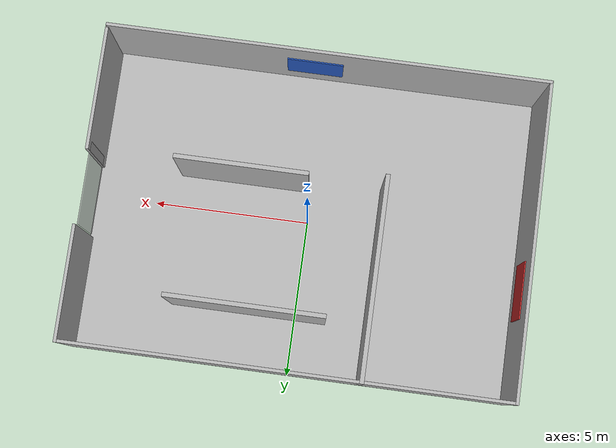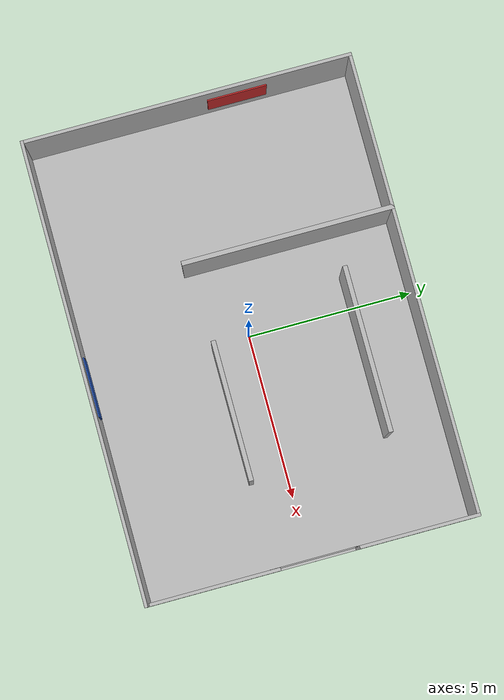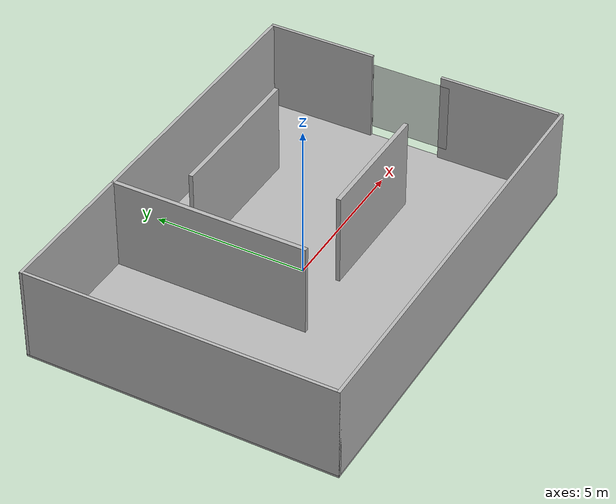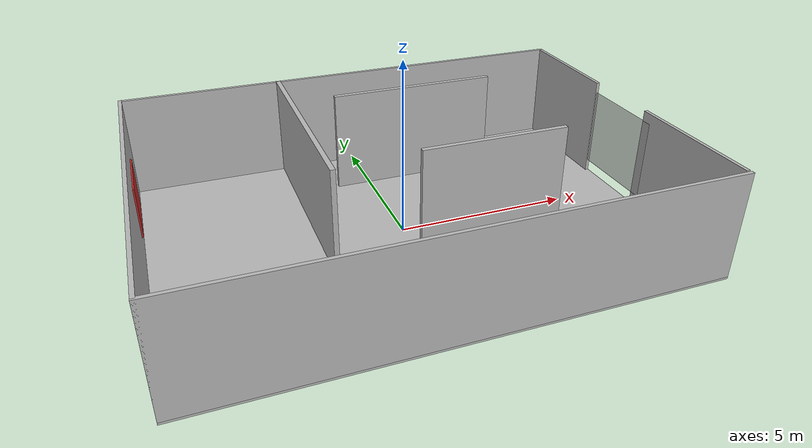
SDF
<sdf version="1.7">
 <world name="gs_lab">
  <physics type="ode"><max_step_size>0.003</max_step_size><real_time_factor>1.0</real_time_factor></physics>
  <plugin name="gz::sim::systems::Physics" filename="gz-sim-physics-system"/>
  <plugin name="gz::sim::systems::UserCommands" filename="gz-sim-user-commands-system"/>
  <plugin name="gz::sim::systems::SceneBroadcaster" filename="gz-sim-scene-broadcaster-system"/>
  <plugin name="gz::sim::systems::Contact" filename="gz-sim-contact-system"/>
  <scene>
   <ambient>0.6 0.6 0.6 1</ambient>
   <background>0.9 0.94 0.98 1</background>
   <shadows>true</shadows>
   <grid>false</grid>
  </scene>
  <gravity>0 0 -9.8</gravity>
  <light name="sun" type="directional">
   <pose>0 0 12 0 0 0</pose>
   <diffuse>0.85 0.85 0.82 1</diffuse>
   <specular>0.18 0.18 0.18 1</specular>
   <direction>-0.2 0.15 -0.97</direction>
  </light>
  <light name="fill_light" type="point">
   <pose>0 0 2.8 0 0 0</pose>
   <diffuse>0.7 0.72 0.8 1</diffuse>
   <specular>0.05 0.05 0.05 1</specular>
   <attenuation>
    <range>18</range>
    <constant>0.7</constant>
    <linear>0.04</linear>
    <quadratic>0.01</quadratic>
   </attenuation>
  </light>
  <model name="floor">
   <static>true</static>
   <pose>0 0 -0.03 0 0 0</pose>
   <link name="link">
    <collision name="collision"><geometry><box><size>14 10 0.06</size></box></geometry></collision>
    <visual name="visual">
     <geometry><box><size>14 10 0.06</size></box></geometry>
     <material>
      <pbr>
       <metal>
        <albedo_map>file://worlds/gs_lab_materials/textures/FLOOR_Albedo.png</albedo_map>
        <normal_map>file://worlds/gs_lab_materials/textures/FLOOR_Normal.png</normal_map>
        <roughness_map>file://worlds/gs_lab_materials/textures/FLOOR_Roughness.png</roughness_map>
        <metalness_map>file://worlds/gs_lab_materials/textures/FLOOR_Metalness.png</metalness_map>
       </metal>
      </pbr>
     </material>
    </visual>
   </link>
  </model>
  <model name="wall_north">
   <static>true</static>
   <pose>0 4.95 1.5 0 0 0</pose>
   <link name="link">
    <collision name="collision"><geometry><box><size>14 0.1 3</size></box></geometry></collision>
    <visual name="visual">
     <geometry><box><size>14 0.1 3</size></box></geometry>
     <material>
      <pbr>
       <metal>
        <albedo_map>file://worlds/gs_lab_materials/textures/WALLS_Albedo.png</albedo_map>
        <normal_map>file://worlds/gs_lab_materials/textures/WALLS_Normal.png</normal_map>
        <roughness_map>file://worlds/gs_lab_materials/textures/WALLS_Roughness.png</roughness_map>
        <metalness_map>file://worlds/gs_lab_materials/textures/WALLS_Metalness.png</metalness_map>
       </metal>
      </pbr>
     </material>
    </visual>
   </link>
  </model>
  <model name="wall_south">
   <static>true</static>
   <pose>0 -4.95 1.5 0 0 0</pose>
   <link name="link">
    <collision name="collision"><geometry><box><size>14 0.1 3</size></box></geometry></collision>
    <visual name="visual">
     <geometry><box><size>14 0.1 3</size></box></geometry>
     <material>
      <pbr>
       <metal>
        <albedo_map>file://worlds/gs_lab_materials/textures/WALLS_Albedo.png</albedo_map>
        <normal_map>file://worlds/gs_lab_materials/textures/WALLS_Normal.png</normal_map>
        <roughness_map>file://worlds/gs_lab_materials/textures/WALLS_Roughness.png</roughness_map>
        <metalness_map>file://worlds/gs_lab_materials/textures/WALLS_Metalness.png</metalness_map>
       </metal>
      </pbr>
     </material>
    </visual>
   </link>
  </model>
  <model name="wall_west">
   <static>true</static>
   <pose>-6.95 0 1.5 0 0 0</pose>
   <link name="link">
    <collision name="collision"><geometry><box><size>0.1 10 3</size></box></geometry></collision>
    <visual name="visual">
     <geometry><box><size>0.1 10 3</size></box></geometry>
     <material>
      <pbr>
       <metal>
        <albedo_map>file://worlds/gs_lab_materials/textures/WALLS_Albedo.png</albedo_map>
        <normal_map>file://worlds/gs_lab_materials/textures/WALLS_Normal.png</normal_map>
        <roughness_map>file://worlds/gs_lab_materials/textures/WALLS_Roughness.png</roughness_map>
        <metalness_map>file://worlds/gs_lab_materials/textures/WALLS_Metalness.png</metalness_map>
       </metal>
      </pbr>
     </material>
    </visual>
   </link>
  </model>
  <model name="wall_east_lower">
   <static>true</static>
   <pose>6.95 -2.9 1.5 0 0 0</pose>
   <link name="link">
    <collision name="collision"><geometry><box><size>0.1 3.9 3</size></box></geometry></collision>
    <visual name="visual">
     <geometry><box><size>0.1 3.9 3</size></box></geometry>
     <material>
      <pbr>
       <metal>
        <albedo_map>file://worlds/gs_lab_materials/textures/WALLS_Albedo.png</albedo_map>
        <normal_map>file://worlds/gs_lab_materials/textures/WALLS_Normal.png</normal_map>
        <roughness_map>file://worlds/gs_lab_materials/textures/WALLS_Roughness.png</roughness_map>
        <metalness_map>file://worlds/gs_lab_materials/textures/WALLS_Metalness.png</metalness_map>
       </metal>
      </pbr>
     </material>
    </visual>
   </link>
  </model>
  <model name="wall_east_upper">
   <static>true</static>
   <pose>6.95 3.2 1.5 0 0 0</pose>
   <link name="link">
    <collision name="collision"><geometry><box><size>0.1 3.6 3</size></box></geometry></collision>
    <visual name="visual">
     <geometry><box><size>0.1 3.6 3</size></box></geometry>
     <material>
      <pbr>
       <metal>
        <albedo_map>file://worlds/gs_lab_materials/textures/WALLS_Albedo.png</albedo_map>
        <normal_map>file://worlds/gs_lab_materials/textures/WALLS_Normal.png</normal_map>
        <roughness_map>file://worlds/gs_lab_materials/textures/WALLS_Roughness.png</roughness_map>
        <metalness_map>file://worlds/gs_lab_materials/textures/WALLS_Metalness.png</metalness_map>
       </metal>
      </pbr>
     </material>
    </visual>
   </link>
  </model>
  <model name="window_east">
   <static>true</static>
   <pose>6.91 0.05 1.55 0 0 0</pose>
   <link name="link">
    <collision name="collision"><geometry><box><size>0.03 2.6 2.3</size></box></geometry></collision>
    <visual name="visual">
     <geometry><box><size>0.03 2.6 2.3</size></box></geometry>
     <material>
      <pbr>
       <metal>
        <albedo_map>file://worlds/gs_lab_materials/textures/Window_WINDOW_BaseColor.png</albedo_map>
        <roughness_map>file://worlds/gs_lab_materials/textures/Window_WINDOW_Roughness.png</roughness_map>
        <metalness_map>file://worlds/gs_lab_materials/textures/Window_WINDOW_Metallic.png</metalness_map>
       </metal>
      </pbr>
     </material>
     <transparency>0.35</transparency>
    </visual>
   </link>
  </model>
  <model name="partition_a">
   <static>true</static>
   <pose>-2.3 1.8 1.5 0 0 0</pose>
   <link name="link">
    <collision name="collision"><geometry><box><size>0.14 6.4 3</size></box></geometry></collision>
    <visual name="visual">
     <geometry><box><size>0.14 6.4 3</size></box></geometry>
     <material>
      <pbr>
       <metal>
        <albedo_map>file://worlds/gs_lab_materials/textures/WALLS_Albedo.png</albedo_map>
        <normal_map>file://worlds/gs_lab_materials/textures/WALLS_Normal.png</normal_map>
        <roughness_map>file://worlds/gs_lab_materials/textures/WALLS_Roughness.png</roughness_map>
        <metalness_map>file://worlds/gs_lab_materials/textures/WALLS_Metalness.png</metalness_map>
       </metal>
      </pbr>
     </material>
    </visual>
   </link>
  </model>
  <model name="partition_b">
   <static>true</static>
   <pose>1.5 3.15 1.5 0 0 0</pose>
   <link name="link">
    <collision name="collision"><geometry><box><size>5.0 0.14 3</size></box></geometry></collision>
    <visual name="visual">
     <geometry><box><size>5.0 0.14 3</size></box></geometry>
     <material>
      <pbr>
       <metal>
        <albedo_map>file://worlds/gs_lab_materials/textures/WALLS_Albedo.png</albedo_map>
        <normal_map>file://worlds/gs_lab_materials/textures/WALLS_Normal.png</normal_map>
        <roughness_map>file://worlds/gs_lab_materials/textures/WALLS_Roughness.png</roughness_map>
        <metalness_map>file://worlds/gs_lab_materials/textures/WALLS_Metalness.png</metalness_map>
       </metal>
      </pbr>
     </material>
    </visual>
   </link>
  </model>
  <model name="partition_c">
   <static>true</static>
   <pose>2.2 -1.1 1.5 0 0 0</pose>
   <link name="link">
    <collision name="collision"><geometry><box><size>4.2 0.14 3</size></box></geometry></collision>
    <visual name="visual">
     <geometry><box><size>4.2 0.14 3</size></box></geometry>
     <material>
      <pbr>
       <metal>
        <albedo_map>file://worlds/gs_lab_materials/textures/WALLS_Albedo.png</albedo_map>
        <normal_map>file://worlds/gs_lab_materials/textures/WALLS_Normal.png</normal_map>
        <roughness_map>file://worlds/gs_lab_materials/textures/WALLS_Roughness.png</roughness_map>
        <metalness_map>file://worlds/gs_lab_materials/textures/WALLS_Metalness.png</metalness_map>
       </metal>
      </pbr>
     </material>
    </visual>
   </link>
  </model>
  <model name="paint_panel_red">
   <static>true</static>
   <pose>-6.85 1.5 1.6 0 0 0</pose>
   <link name="link">
    <collision name="collision"><geometry><box><size>0.04 1.8 1.4</size></box></geometry></collision>
    <visual name="visual">
     <geometry><box><size>0.04 1.8 1.4</size></box></geometry>
     <material><ambient>0.78 0.16 0.16 1</ambient><diffuse>0.78 0.16 0.16 1</diffuse></material>
    </visual>
   </link>
  </model>
  <model name="paint_panel_blue">
   <static>true</static>
   <pose>0.4 -4.88 1.4 0 0 0</pose>
   <link name="link">
    <collision name="collision"><geometry><box><size>1.8 0.04 1.3</size></box></geometry></collision>
    <visual name="visual">
     <geometry><box><size>1.8 0.04 1.3</size></box></geometry>
     <material><ambient>0.15 0.35 0.76 1</ambient><diffuse>0.15 0.35 0.76 1</diffuse></material>
    </visual>
   </link>
  </model>
 </world>
</sdf>
